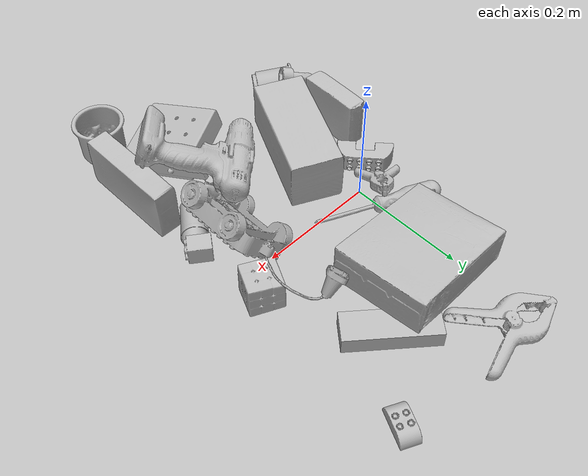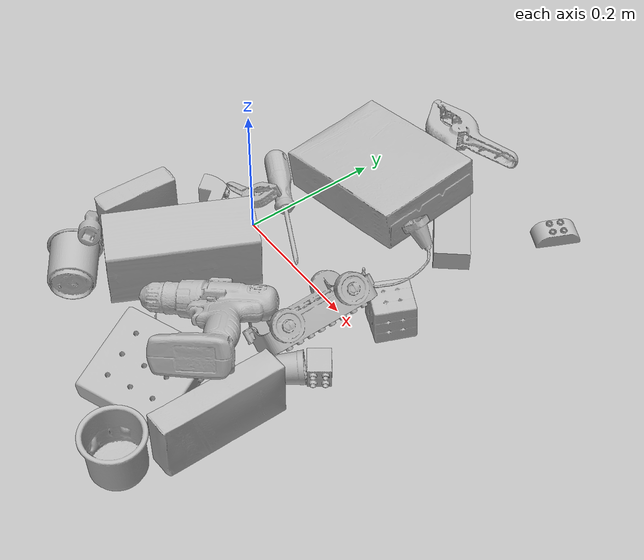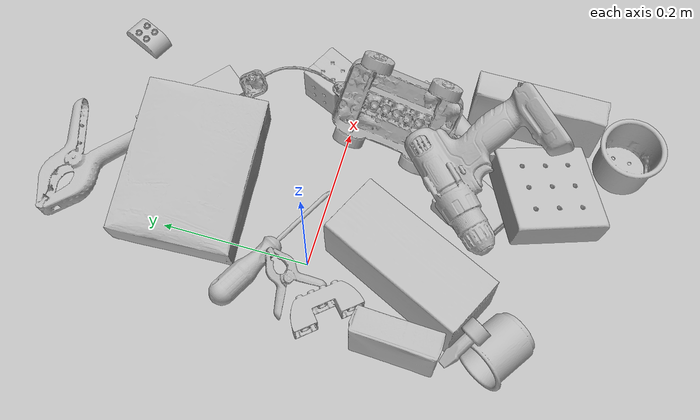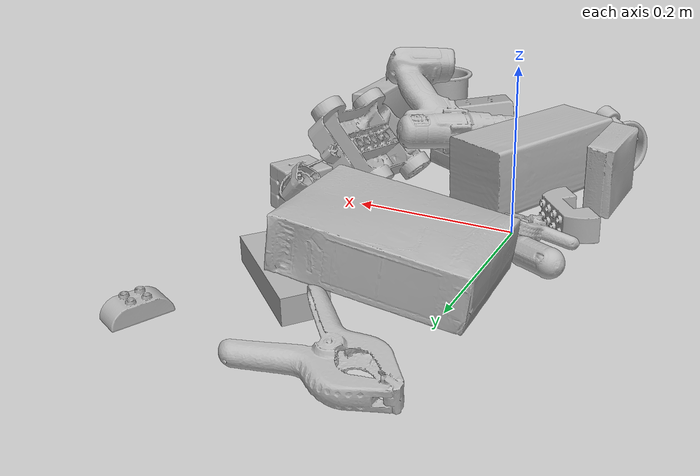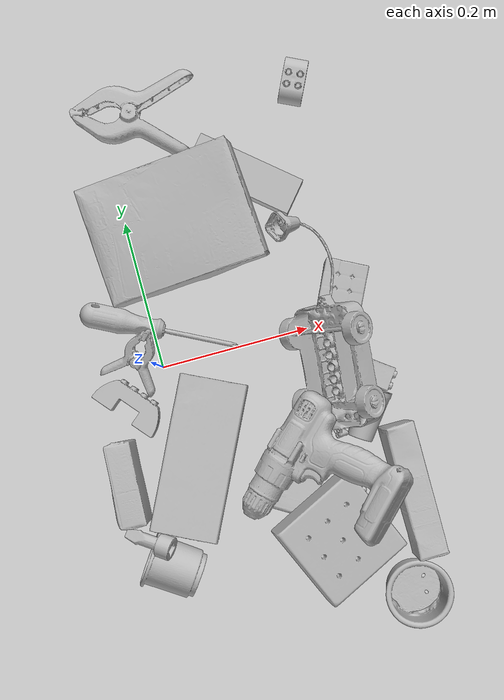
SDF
<sdf version="1.4">
  <world name="default">
    <light name="light1" type="point">
      <pose>0 0 1 0 0 0</pose>
      <diffuse>3 3 3 1</diffuse>
      <specular>3 3 3 1</specular>
    </light>
    <light name="light2" type="point">
      <pose>0 0.5 2 0 0 0</pose>
      <diffuse>1 1 1 1</diffuse>
      <specular>1 1 1 1</specular>
    </light>
    <light name="light3" type="point">
      <pose>0 0.5 2 0 0 0</pose>
      <diffuse>3 3 3 1</diffuse>
      <specular>3 3 3 1</specular>
    </light>
    <scene>
      <ambient>0.7 0.7 0.7</ambient>
    </scene>
    <model name="box21">
      <link name="link_box21">
        <collision name="default">
          <geometry>
            <mesh>
              <uri>model://cracker_box/collision_meshes/collision.obj</uri>
              <scale>1.0 1.0 1.0</scale>
            </mesh>
          </geometry>
          <surface>
            <friction>
              <ode>
                <mu>0.5</mu>
                <mu2>0.5</mu2>
              </ode>
            </friction>
          <contact>
        <ode>
            <max_vel>0</max_vel>
            <min_depth>0.0001</min_depth>
            <kp>1e8</kp>
        </ode>
    </contact></surface>
        </collision>
        <visual name="default">
          <geometry>
            <mesh>
              <uri>model://cracker_box/visual_meshes/visual.dae</uri>
              <scale>1.0 1.0 1.0</scale>
            </mesh>
          </geometry>
        </visual>
        <inertial>
          <mass>2.590176582336426</mass>
          <pose>0.0009464152390137315 0.00025434247800149024 -0.0017029535956680775 -0.0003162072774594163 -0.011106486806667554 0.0025467954652388498</pose>
          <inertia>
            <ixx>0.0065882523</ixx>
            <iyy>0.0108785</iyy>
            <izz>0.015524619</izz>
            <ixy>0</ixy>
            <ixz>0</ixz>
            <iyz>0</iyz>
          </inertia>
        </inertial>
      </link>
      <pose>0.06376534700393677 0.17641912400722504 0.051170818507671356 3.0905153546953326 0.13824114368925453 -3.0747645485190467</pose>
    </model>
    <model name="box22">
      <link name="link_box22">
        <collision name="default">
          <geometry>
            <mesh>
              <uri>model://gelatin_box/collision_meshes/collision.obj</uri>
              <scale>1.0 1.0 1.0</scale>
            </mesh>
          </geometry>
          <surface>
            <friction>
              <ode>
                <mu>0.5</mu>
                <mu2>0.5</mu2>
              </ode>
            </friction>
          <contact>
        <ode>
            <max_vel>0</max_vel>
            <min_depth>0.0001</min_depth>
            <kp>1e8</kp>
        </ode>
    </contact></surface>
        </collision>
        <visual name="default">
          <geometry>
            <mesh>
              <uri>model://gelatin_box/visual_meshes/visual.dae</uri>
              <scale>1.0 1.0 1.0</scale>
            </mesh>
          </geometry>
        </visual>
        <inertial>
          <mass>0.25047940015792847</mass>
          <pose>0.0004319618456065655 0.00011156871914863586 -0.0003640321083366871 -0.0010503719848663328 -0.004755819155031653 0.016440561334722496</pose>
          <inertia>
            <ixx>0.00017681804</ixx>
            <iyy>0.00012630019</iyy>
            <izz>0.0002691564</izz>
            <ixy>0</ixy>
            <ixz>0</ixz>
            <iyz>0</iyz>
          </inertia>
        </inertial>
      </link>
      <pose>0.13047364354133606 -0.18981216847896576 0.01457969844341278 -3.1259396604269556 -0.025656896835561264 2.599546267716873</pose>
    </model>
    <model name="box23">
      <link name="link_box23">
        <collision name="default">
          <geometry>
            <mesh>
              <uri>model://pudding_box/collision_meshes/collision.obj</uri>
              <scale>1.0 1.0 1.0</scale>
            </mesh>
          </geometry>
          <surface>
            <friction>
              <ode>
                <mu>0.5</mu>
                <mu2>0.5</mu2>
              </ode>
            </friction>
          <contact>
        <ode>
            <max_vel>0</max_vel>
            <min_depth>0.0001</min_depth>
            <kp>1e8</kp>
        </ode>
    </contact></surface>
        </collision>
        <visual name="default">
          <geometry>
            <mesh>
              <uri>model://pudding_box/visual_meshes/visual.dae</uri>
              <scale>1.0 1.0 1.0</scale>
            </mesh>
          </geometry>
        </visual>
        <inertial>
          <mass>0.39469316601753235</mass>
          <pose>0.0004894821904599667 0.000806788622867316 -0.0005188827635720372 0.005213100892100292 -0.006603796836808699 0.020079821441474487</pose>
          <inertia>
            <ixx>0.00044618026</ixx>
            <iyy>0.00030019323</iyy>
            <izz>0.00065890176</izz>
            <ixy>0</ixy>
            <ixz>0</ixz>
            <iyz>0</iyz>
          </inertia>
        </inertial>
      </link>
      <pose>-0.07959938049316406 -0.13672183454036713 0.04457633197307587 -0.020299717337876777 -1.5480687270232394 3.1079666939112416</pose>
    </model>
    <model name="cup1">
      <link name="link_cup1">
        <collision name="default">
          <geometry>
            <mesh>
              <uri>model://cup_small/collision_meshes/collision.obj</uri>
              <scale>1.0 1.0 1.0</scale>
            </mesh>
          </geometry>
          <surface>
            <friction>
              <ode>
                <mu>0.5</mu>
                <mu2>0.5</mu2>
              </ode>
            </friction>
          <contact>
        <ode>
            <max_vel>0</max_vel>
            <min_depth>0.0001</min_depth>
            <kp>1e8</kp>
        </ode>
    </contact></surface>
        </collision>
        <visual name="default">
          <geometry>
            <mesh>
              <uri>model://cup_small/visual_meshes/visual.dae</uri>
              <scale>1.0 1.0 1.0</scale>
            </mesh>
          </geometry>
        </visual>
        <inertial>
          <mass>0.021035347133874893</mass>
          <pose>0.0001048244594130665 -0.0003377834218554199 -0.010742821730673313 -0.011493211249102088 -0.015280240526329824 -0.5058153233609384</pose>
          <inertia>
            <ixx>1.2385285e-05</ixx>
            <iyy>1.2449176e-05</iyy>
            <izz>5.591994e-06</izz>
            <ixy>0</ixy>
            <ixz>0</ixz>
            <iyz>0</iyz>
          </inertia>
        </inertial>
      </link>
      <pose>0.24803908169269562 -0.13086938858032227 0.01984725520014763 -1.4802178847188119 -0.2758076443428424 -0.6007876558980176</pose>
    </model>
    <model name="cup2">
      <link name="link_cup2">
        <collision name="default">
          <geometry>
            <mesh>
              <uri>model://e_cups/collision_meshes/collision.obj</uri>
              <scale>1.0 1.0 1.0</scale>
            </mesh>
          </geometry>
          <surface>
            <friction>
              <ode>
                <mu>0.5</mu>
                <mu2>0.5</mu2>
              </ode>
            </friction>
          <contact>
        <ode>
            <max_vel>0</max_vel>
            <min_depth>0.0001</min_depth>
            <kp>1e8</kp>
        </ode>
    </contact></surface>
        </collision>
        <visual name="default">
          <geometry>
            <mesh>
              <uri>model://e_cups/visual_meshes/visual.dae</uri>
              <scale>1.0 1.0 1.0</scale>
            </mesh>
          </geometry>
        </visual>
        <inertial>
          <mass>0.053841520100831985</mass>
          <pose>0.0011355747701600194 0.0028797851409763098 -0.0038829720579087734 0.69523823542345 0.08767615215021585 -0.5235238319868403</pose>
          <inertia>
            <ixx>4.7474743e-05</ixx>
            <iyy>4.9617902e-05</iyy>
            <izz>4.5391338e-05</izz>
            <ixy>0</ixy>
            <ixz>0</ixz>
            <iyz>0</iyz>
          </inertia>
        </inertial>
      </link>
      <pose>-0.05014665797352791 -0.2577556371688843 0.03490014746785164 -1.4822644710867303 -0.4771310798208484 0.9266115177681811</pose>
    </model>
    <model name="box11">
      <link name="link_box11">
        <collision name="default">
          <geometry>
            <mesh>
              <uri>model://jenga/collision_meshes/collision.obj</uri>
              <scale>1.0 1.0 1.0</scale>
            </mesh>
          </geometry>
          <surface>
            <friction>
              <ode>
                <mu>0.5</mu>
                <mu2>0.5</mu2>
              </ode>
            </friction>
          <contact>
        <ode>
            <max_vel>0</max_vel>
            <min_depth>0.0001</min_depth>
            <kp>1e8</kp>
        </ode>
    </contact></surface>
        </collision>
        <visual name="default">
          <geometry>
            <mesh>
              <uri>model://jenga/visual_meshes/visual.dae</uri>
              <scale>1.0 1.0 1.0</scale>
            </mesh>
          </geometry>
        </visual>
        <inertial>
          <mass>0.26362571120262146</mass>
          <pose>-2.502855807051674e-07 -0.00010250010382151231 -4.0923401684267446e-05 0.0 -7.342155186052628e-07 0.0</pose>
          <inertia>
            <ixx>7.295163e-05</ixx>
            <iyy>0.0004943182</iyy>
            <izz>0.0005277267</izz>
            <ixy>0</ixy>
            <ixz>0</ixz>
            <iyz>0</iyz>
          </inertia>
        </inertial>
      </link>
      <pose>0.17220234870910645 0.220315083861351 0.015000163577497005 -3.141466468829825 5.878705167334289e-06 2.444266873341413</pose>
    </model>
    <model name="box12">
      <link name="link_box12">
        <collision name="default">
          <geometry>
            <mesh>
              <uri>model://rubiks_cube/collision_meshes/collision.obj</uri>
              <scale>1.0 1.0 1.0</scale>
            </mesh>
          </geometry>
          <surface>
            <friction>
              <ode>
                <mu>0.5</mu>
                <mu2>0.5</mu2>
              </ode>
            </friction>
          <contact>
        <ode>
            <max_vel>0</max_vel>
            <min_depth>0.0001</min_depth>
            <kp>1e8</kp>
        </ode>
    </contact></surface>
        </collision>
        <visual name="default">
          <geometry>
            <mesh>
              <uri>model://rubiks_cube/visual_meshes/visual.dae</uri>
              <scale>1.0 1.0 1.0</scale>
            </mesh>
          </geometry>
        </visual>
        <inertial>
          <mass>0.2476155012845993</mass>
          <pose>2.6721041649580002e-05 5.256966323941015e-05 -7.2643156272533815e-06 -0.05467269607811095 -0.09813983501015876 -0.034455733913541106</pose>
          <inertia>
            <ixx>0.00013682418</ixx>
            <iyy>0.0001361861</iyy>
            <izz>0.00013795799</izz>
            <ixy>0</ixy>
            <ixz>0</ixz>
            <iyz>0</iyz>
          </inertia>
        </inertial>
      </link>
      <pose>0.26008036732673645 0.042808081954717636 0.02926173247396946 1.2518813176141559 1.5373858766323587 0.8135323730319147</pose>
    </model>
    <model name="box13">
      <link name="link_box13">
        <collision name="default">
          <geometry>
            <mesh>
              <uri>model://sugar_box/collision_meshes/collision.obj</uri>
              <scale>1.0 1.0 1.0</scale>
            </mesh>
          </geometry>
          <surface>
            <friction>
              <ode>
                <mu>0.5</mu>
                <mu2>0.5</mu2>
              </ode>
            </friction>
          <contact>
        <ode>
            <max_vel>0</max_vel>
            <min_depth>0.0001</min_depth>
            <kp>1e8</kp>
        </ode>
    </contact></surface>
        </collision>
        <visual name="default">
          <geometry>
            <mesh>
              <uri>model://sugar_box/visual_meshes/visual.dae</uri>
              <scale>1.0 1.0 1.0</scale>
            </mesh>
          </geometry>
        </visual>
        <inertial>
          <mass>0.6861893534660339</mass>
          <pose>0.0010343727190047503 3.849109634757042e-05 -0.0003636480250861496 -0.00040462627129080113 0.001050663522124822 0.0026153787889376494</pose>
          <inertia>
            <ixx>0.0005717311</ixx>
            <iyy>0.0018479523</iyy>
            <izz>0.0022122194</izz>
            <ixy>0</ixy>
            <ixz>0</ixz>
            <iyz>0</iyz>
          </inertia>
        </inertial>
      </link>
      <pose>0.27694639563560486 -0.23961853981018066 0.046448852866888046 1.5712006262189246 -6.699538352628058e-05 1.5727117738210366</pose>
    </model>
    <model name="box14">
      <link name="link_box14">
        <collision name="default">
          <geometry>
            <mesh>
              <uri>model://wood_block/collision_meshes/collision.obj</uri>
              <scale>1.0 1.0 1.0</scale>
            </mesh>
          </geometry>
          <surface>
            <friction>
              <ode>
                <mu>0.5</mu>
                <mu2>0.5</mu2>
              </ode>
            </friction>
          <contact>
        <ode>
            <max_vel>0</max_vel>
            <min_depth>0.0001</min_depth>
            <kp>1e8</kp>
        </ode>
    </contact></surface>
        </collision>
        <visual name="default">
          <geometry>
            <mesh>
              <uri>model://wood_block/visual_meshes/visual.dae</uri>
              <scale>1.0 1.0 1.0</scale>
            </mesh>
          </geometry>
        </visual>
        <inertial>
          <mass>2.2081377506256104</mass>
          <pose>-5.813315965497168e-06 -0.000570809468626976 0.00026408585836179554 -0.052206634003801496 -0.0051926960857359 -0.00686137798931887</pose>
          <inertia>
            <ixx>0.0029548227</ixx>
            <iyy>0.009334286</iyy>
            <izz>0.0092993695</izz>
            <ixy>0</ixy>
            <ixz>0</ixz>
            <iyz>0</iyz>
          </inertia>
        </inertial>
      </link>
      <pose>0.019005831331014633 -0.1281222105026245 0.045700669288635254 1.5681283121193625 -0.006939371272731645 -2.018613703122681</pose>
    </model>
    <model name="cup15">
      <link name="link_cup15">
        <collision name="default">
          <geometry>
            <mesh>
              <uri>model://g_cups/collision_meshes/collision.obj</uri>
              <scale>1.0 1.0 1.0</scale>
            </mesh>
          </geometry>
          <surface>
            <friction>
              <ode>
                <mu>0.5</mu>
                <mu2>0.5</mu2>
              </ode>
            </friction>
          <contact>
        <ode>
            <max_vel>0</max_vel>
            <min_depth>0.0001</min_depth>
            <kp>1e8</kp>
        </ode>
    </contact></surface>
        </collision>
        <visual name="default">
          <geometry>
            <mesh>
              <uri>model://g_cups/visual_meshes/visual.dae</uri>
              <scale>1.0 1.0 1.0</scale>
            </mesh>
          </geometry>
        </visual>
        <inertial>
          <mass>0.09534990042448044</mass>
          <pose>-0.000794626830611378 -4.206429366604425e-05 -0.002132937079295516 -0.21382187015428292 -0.3141046168173621 0.3112040328096479</pose>
          <inertia>
            <ixx>0.00011129469</ixx>
            <iyy>0.0001109161</iyy>
            <izz>0.00011528214</izz>
            <ixy>0</ixy>
            <ixz>0</ixz>
            <iyz>0</iyz>
          </inertia>
        </inertial>
      </link>
      <pose>0.24704639613628387 -0.36818167567253113 0.03782844543457031 0.00356032204160753 -0.03059975237055972 1.3831821956287587</pose>
    </model>
    <model name="toy1">
      <link name="link_toy1">
        <collision name="default">
          <geometry>
            <mesh>
              <uri>model://a_lego_duplo/collision_meshes/collision.obj</uri>
              <scale>1.0 1.0 1.0</scale>
            </mesh>
          </geometry>
          <surface>
            <friction>
              <ode>
                <mu>0.5</mu>
                <mu2>0.5</mu2>
              </ode>
            </friction>
          <contact>
        <ode>
            <max_vel>0</max_vel>
            <min_depth>0.0001</min_depth>
            <kp>1e8</kp>
        </ode>
    </contact></surface>
        </collision>
        <visual name="default">
          <geometry>
            <mesh>
              <uri>model://a_lego_duplo/visual_meshes/visual.dae</uri>
              <scale>1.0 1.0 1.0</scale>
            </mesh>
          </geometry>
        </visual>
        <inertial>
          <mass>0.019288161769509315</mass>
          <pose>-0.00011337728938087821 0.00018517542048357427 0.00036926069878973067 -0.014116980162122142 -0.00012566491180396528 6.141847735431564e-05</pose>
          <inertia>
            <ixx>2.4728956e-06</ixx>
            <iyy>5.539828e-06</iyy>
            <izz>6.86231e-06</izz>
            <ixy>0</ixy>
            <ixz>0</ixz>
            <iyz>0</iyz>
          </inertia>
        </inertial>
      </link>
      <pose>0.27004942297935486 0.3286083936691284 0.012112000025808811 -2.3423757589431912e-09 1.1156195545318007e-08 1.1302629105678055</pose>
    </model>
    <model name="toy2">
      <link name="link_toy2">
        <collision name="default">
          <geometry>
            <mesh>
              <uri>model://nine_hole_peg_test/collision_meshes/collision.obj</uri>
              <scale>1.0 1.0 1.0</scale>
            </mesh>
          </geometry>
          <surface>
            <friction>
              <ode>
                <mu>0.5</mu>
                <mu2>0.5</mu2>
              </ode>
            </friction>
          <contact>
        <ode>
            <max_vel>0</max_vel>
            <min_depth>0.0001</min_depth>
            <kp>1e8</kp>
        </ode>
    </contact></surface>
        </collision>
        <visual name="default">
          <geometry>
            <mesh>
              <uri>model://nine_hole_peg_test/visual_meshes/visual.dae</uri>
              <scale>1.0 1.0 1.0</scale>
            </mesh>
          </geometry>
        </visual>
        <inertial>
          <mass>0.4416040778160095</mass>
          <pose>-0.004617387894541025 -0.009647616185247898 2.646069333422929e-05 -0.001466680632441769 0.0007194151669294288 -0.6342433000636255</pose>
          <inertia>
            <ixx>0.00069052057</ixx>
            <iyy>0.0006447319</iyy>
            <izz>0.0012099957</izz>
            <ixy>0</ixy>
            <ixz>0</ixz>
            <iyz>0</iyz>
          </inertia>
        </inertial>
      </link>
      <pose>0.16779449582099915 -0.2644836902618408 0.04162593185901642 0.2205450732574179 0.11785417277865283 0.44723920732297595</pose>
    </model>
    <model name="toy3">
      <link name="link_toy3">
        <collision name="default">
          <geometry>
            <mesh>
              <uri>model://b_lego_duplo/collision_meshes/collision.obj</uri>
              <scale>1.0 1.0 1.0</scale>
            </mesh>
          </geometry>
          <surface>
            <friction>
              <ode>
                <mu>0.5</mu>
                <mu2>0.5</mu2>
              </ode>
            </friction>
          <contact>
        <ode>
            <max_vel>0</max_vel>
            <min_depth>0.0001</min_depth>
            <kp>1e8</kp>
        </ode>
    </contact></surface>
        </collision>
        <visual name="default">
          <geometry>
            <mesh>
              <uri>model://b_lego_duplo/visual_meshes/visual.dae</uri>
              <scale>1.0 1.0 1.0</scale>
            </mesh>
          </geometry>
        </visual>
        <inertial>
          <mass>0.05141952633857727</mass>
          <pose>-0.00011053046182496473 -9.15286273084348e-06 0.0019294298253953457 -0.03749504579203769 -0.026353926476799443 0.45190277296460496</pose>
          <inertia>
            <ixx>1.0523392e-05</ixx>
            <iyy>1.0594135e-05</iyy>
            <izz>9.376003e-06</izz>
            <ixy>0</ixy>
            <ixz>0</ixz>
            <iyz>0</iyz>
          </inertia>
        </inertial>
      </link>
      <pose>0.2750243842601776 -0.08544592559337616 0.016216646879911423 -1.580224225435082 0.00035024075963524184 -2.2024569505831306</pose>
    </model>
    <model name="toy4">
      <link name="link_toy4">
        <collision name="default">
          <geometry>
            <mesh>
              <uri>model://e_lego_duplo/collision_meshes/collision.obj</uri>
              <scale>1.0 1.0 1.0</scale>
            </mesh>
          </geometry>
          <surface>
            <friction>
              <ode>
                <mu>0.5</mu>
                <mu2>0.5</mu2>
              </ode>
            </friction>
          <contact>
        <ode>
            <max_vel>0</max_vel>
            <min_depth>0.0001</min_depth>
            <kp>1e8</kp>
        </ode>
    </contact></surface>
        </collision>
        <visual name="default">
          <geometry>
            <mesh>
              <uri>model://e_lego_duplo/visual_meshes/visual.dae</uri>
              <scale>1.0 1.0 1.0</scale>
            </mesh>
          </geometry>
        </visual>
        <inertial>
          <mass>0.10851083695888519</mass>
          <pose>0.0003256036143284291 0.00023485413112211972 0.0019521439680829644 -0.022567807713092337 -6.825385155411165e-05 -0.007625153430497312</pose>
          <inertia>
            <ixx>2.2628092e-05</ixx>
            <iyy>9.28715e-05</iyy>
            <izz>9.0438196e-05</izz>
            <ixy>0</ixy>
            <ixz>0</ixz>
            <iyz>0</iyz>
          </inertia>
        </inertial>
      </link>
      <pose>-0.05245938524603844 -0.03733304515480995 0.016279414296150208 1.5786391944393765 -0.004768893474391659 2.2801997307694615</pose>
    </model>
    <model name="toy5">
      <link name="link_toy5">
        <collision name="default">
          <geometry>
            <mesh>
              <uri>model://e_toy_airplane/collision_meshes/collision.obj</uri>
              <scale>1.0 1.0 1.0</scale>
            </mesh>
          </geometry>
          <surface>
            <friction>
              <ode>
                <mu>0.5</mu>
                <mu2>0.5</mu2>
              </ode>
            </friction>
          <contact>
        <ode>
            <max_vel>0</max_vel>
            <min_depth>0.0001</min_depth>
            <kp>1e8</kp>
        </ode>
    </contact></surface>
        </collision>
        <visual name="default">
          <geometry>
            <mesh>
              <uri>model://e_toy_airplane/visual_meshes/visual.dae</uri>
              <scale>1.0 1.0 1.0</scale>
            </mesh>
          </geometry>
        </visual>
        <inertial>
          <mass>0.028576364740729332</mass>
          <pose>0.00011740469926735386 -2.248284363304265e-05 -0.011187203228473663 0.005518470588584354 0.009228302056362008 0.15041344019646216</pose>
          <inertia>
            <ixx>8.721834e-06</ixx>
            <iyy>8.6326145e-06</iyy>
            <izz>2.6212538e-06</izz>
            <ixy>0</ixy>
            <ixz>0</ixz>
            <iyz>0</iyz>
          </inertia>
        </inertial>
      </link>
      <pose>-0.07004207372665405 -0.21363921463489532 0.07383065670728683 2.6798297055450666 1.2793246357660173 -1.0437647288677134</pose>
    </model>
    <model name="toy6">
      <link name="link_toy6">
        <collision name="default">
          <geometry>
            <mesh>
              <uri>model://g_lego_duplo/collision_meshes/collision.obj</uri>
              <scale>1.0 1.0 1.0</scale>
            </mesh>
          </geometry>
          <surface>
            <friction>
              <ode>
                <mu>0.5</mu>
                <mu2>0.5</mu2>
              </ode>
            </friction>
          <contact>
        <ode>
            <max_vel>0</max_vel>
            <min_depth>0.0001</min_depth>
            <kp>1e8</kp>
        </ode>
    </contact></surface>
        </collision>
        <visual name="default">
          <geometry>
            <mesh>
              <uri>model://g_lego_duplo/visual_meshes/visual.dae</uri>
              <scale>1.0 1.0 1.0</scale>
            </mesh>
          </geometry>
        </visual>
        <inertial>
          <mass>0.2849176824092865</mass>
          <pose>-0.050047703087329865 0.0017554622609168291 0.0038806754164397717 0.010963023424049216 0.03810828912622395 -0.09653028734865207</pose>
          <inertia>
            <ixx>0.000412849</ixx>
            <iyy>0.0012481753</iyy>
            <izz>0.0015615128</izz>
            <ixy>0</ixy>
            <ixz>0</ixz>
            <iyz>0</iyz>
          </inertia>
        </inertial>
      </link>
      <pose>0.2216736376285553 0.0004640743136405945 0.06619343161582947 2.3634786101799454 -0.1401852564171919 1.4937361082486151</pose>
    </model>
    <model name="hardware1">
      <link name="link_hardware1">
        <collision name="default">
          <geometry>
            <mesh>
              <uri>model://large_clamp/collision_meshes/collision.obj</uri>
              <scale>1.0 1.0 1.0</scale>
            </mesh>
          </geometry>
          <surface>
            <friction>
              <ode>
                <mu>0.5</mu>
                <mu2>0.5</mu2>
              </ode>
            </friction>
          <contact>
        <ode>
            <max_vel>0</max_vel>
            <min_depth>0.0001</min_depth>
            <kp>1e8</kp>
        </ode>
    </contact></surface>
        </collision>
        <visual name="default">
          <geometry>
            <mesh>
              <uri>model://large_clamp/visual_meshes/visual.dae</uri>
              <scale>1.0 1.0 1.0</scale>
            </mesh>
          </geometry>
        </visual>
        <inertial>
          <mass>0.15191641449928284</mass>
          <pose>0.006369356997311115 0.00035856704926118255 -0.00018398075189907104 -0.0021330805905738653 0.00967158570552682 0.02663313568730603</pose>
          <inertia>
            <ixx>0.00013403181</ixx>
            <iyy>0.0002545337</iyy>
            <izz>0.00036821538</izz>
            <ixy>0</ixy>
            <ixz>0</ixz>
            <iyz>0</iyz>
          </inertia>
        </inertial>
      </link>
      <pose>0.04717240855097771 0.3380524814128876 0.019825266674160957 -3.0182834598123764 0.0830325376990251 2.9080909050330477</pose>
    </model>
    <model name="hardware2">
      <link name="link_hardware2">
        <collision name="default">
          <geometry>
            <mesh>
              <uri>model://phillips_screwdriver/collision_meshes/collision.obj</uri>
              <scale>1.0 1.0 1.0</scale>
            </mesh>
          </geometry>
          <surface>
            <friction>
              <ode>
                <mu>0.5</mu>
                <mu2>0.5</mu2>
              </ode>
            </friction>
          <contact>
        <ode>
            <max_vel>0</max_vel>
            <min_depth>0.0001</min_depth>
            <kp>1e8</kp>
        </ode>
    </contact></surface>
        </collision>
        <visual name="default">
          <geometry>
            <mesh>
              <uri>model://phillips_screwdriver/visual_meshes/visual.dae</uri>
              <scale>1.0 1.0 1.0</scale>
            </mesh>
          </geometry>
        </visual>
        <inertial>
          <mass>0.09855502843856812</mass>
          <pose>-0.04777182266116142 0.001036230125464499 -0.00045555492397397757 -0.15717104537538515 0.005850995063257979 -0.0021567379341223374</pose>
          <inertia>
            <ixx>1.15792045e-05</ixx>
            <iyy>0.00014518296</iyy>
            <izz>0.00014530632</izz>
            <ixy>0</ixy>
            <ixz>0</ixz>
            <iyz>0</iyz>
          </inertia>
        </inertial>
      </link>
      <pose>0.007461279630661011 0.05147485435009003 0.014949165284633636 -2.5609796439545427 0.05156092571441046 -0.46879937770466235</pose>
    </model>
    <model name="hardware3">
      <link name="link_hardware3">
        <collision name="default">
          <geometry>
            <mesh>
              <uri>model://power_drill/collision_meshes/collision.obj</uri>
              <scale>1.0 1.0 1.0</scale>
            </mesh>
          </geometry>
          <surface>
            <friction>
              <ode>
                <mu>0.5</mu>
                <mu2>0.5</mu2>
              </ode>
            </friction>
          <contact>
        <ode>
            <max_vel>0</max_vel>
            <min_depth>0.0001</min_depth>
            <kp>1e8</kp>
        </ode>
    </contact></surface>
        </collision>
        <visual name="default">
          <geometry>
            <mesh>
              <uri>model://power_drill/visual_meshes/visual.dae</uri>
              <scale>1.0 1.0 1.0</scale>
            </mesh>
          </geometry>
        </visual>
        <inertial>
          <mass>0.8579708337783813</mass>
          <pose>-0.01478054840117693 0.01436943281441927 0.0012414173688739538 0.004609163561922946 0.004073017669368797 -0.18362705043487879</pose>
          <inertia>
            <ixx>0.0034962718</ixx>
            <iyy>0.0013756006</iyy>
            <izz>0.0046174442</izz>
            <ixy>0</ixy>
            <ixz>0</ixz>
            <iyz>0</iyz>
          </inertia>
        </inertial>
      </link>
      <pose>0.16853339970111847 -0.2005874514579773 0.0854523777961731 -2.7634789935804873 0.10359152685473917 -2.3555626808828967</pose>
    </model>
    <model name="hardware4">
      <link name="link_hardware4">
        <collision name="default">
          <geometry>
            <mesh>
              <uri>model://medium_clamp/collision_meshes/collision.obj</uri>
              <scale>1.0 1.0 1.0</scale>
            </mesh>
          </geometry>
          <surface>
            <friction>
              <ode>
                <mu>0.5</mu>
                <mu2>0.5</mu2>
              </ode>
            </friction>
          <contact>
        <ode>
            <max_vel>0</max_vel>
            <min_depth>0.0001</min_depth>
            <kp>1e8</kp>
        </ode>
    </contact></surface>
        </collision>
        <visual name="default">
          <geometry>
            <mesh>
              <uri>model://medium_clamp/visual_meshes/visual.dae</uri>
              <scale>1.0 1.0 1.0</scale>
            </mesh>
          </geometry>
        </visual>
        <inertial>
          <mass>0.019661318510770798</mass>
          <pose>0.005390993319451809 0.0003953249251935631 -0.00012221586075611413 -0.0012269159857183107 0.002584502991641296 0.038207758549707246</pose>
          <inertia>
            <ixx>5.356451e-06</ixx>
            <iyy>7.795151e-06</iyy>
            <izz>1.2006867e-05</izz>
            <ixy>0</ixy>
            <ixz>0</ixz>
            <iyz>0</iyz>
          </inertia>
        </inertial>
      </link>
      <pose>-0.03103991225361824 0.016118124127388 0.019873227924108505 0.0009350159090037313 -0.38456190013797575 0.8896290209267053</pose>
    </model>
  <physics type="ode">
      <max_contacts>50</max_contacts>
      <ode>
        <solver>
          <type>quick</type>
          <iters>75</iters>
        </solver>
        <constraints>
          <contact_max_correcting_vel>0</contact_max_correcting_vel>
          <contact_surface_layer>0</contact_surface_layer>
        </constraints>
      </ode>
    </physics></world>
</sdf>
